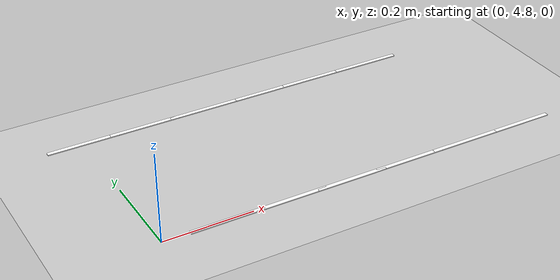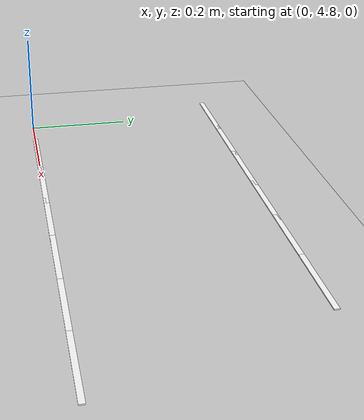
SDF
<sdf version="1.7">
 <world name="default">
  <model name="ground_plane">
   <static>1</static>
   <link name="link">
    <collision name="collision">
     <geometry><plane><normal>0 0 1</normal><size>100 100</size></plane></geometry>
     <surface>
      <contact><collide_bitmask>65535</collide_bitmask></contact>
      <friction><ode><mu>100</mu><mu2>50</mu2></ode></friction>
     </surface>
    </collision>
    <visual name="visual">
     <cast_shadows>0</cast_shadows>
     <geometry><plane><normal>0 0 1</normal><size>100 100</size></plane></geometry>
     <material>
      <script><uri>file://media/materials/scripts/gazebo.material</uri><name>Gazebo/Grey</name></script>
     </material>
    </visual>
   </link>
  </model>
  <model name="lane_line_left_218">
   <static>1</static>
   <link name="link">
    <pose>0 0 -0.004 0 -0 0</pose>
    <visual name="visual">
     <geometry><box><size>0.1629 0.01 0.01</size></box></geometry>
     <material><ambient>1 1 1 1</ambient><diffuse>1 1 1 1</diffuse></material>
    </visual>
    <collision name="collision"><geometry><box><size>0.1629 0.01 0.01</size></box></geometry></collision>
   </link>
   <pose>0.857143 4.8 0 0 -0 3.14159</pose>
  </model>
  <model name="lane_line_left_219">
   <static>1</static>
   <link name="link">
    <pose>0 0 -0.004 0 -0 0</pose>
    <visual name="visual">
     <geometry><box><size>0.1629 0.01 0.01</size></box></geometry>
     <material><ambient>1 1 1 1</ambient><diffuse>1 1 1 1</diffuse></material>
    </visual>
    <collision name="collision"><geometry><box><size>0.1629 0.01 0.01</size></box></geometry></collision>
   </link>
   <pose>0.714286 4.8 0 0 -0 3.14159</pose>
  </model>
  <model name="lane_line_right_219">
   <static>1</static>
   <link name="link">
    <pose>0 0 -0.004 0 -0 0</pose>
    <visual name="visual">
     <geometry><box><size>0.1629 0.01 0.01</size></box></geometry>
     <material><ambient>1 1 1 1</ambient><diffuse>1 1 1 1</diffuse></material>
    </visual>
    <collision name="collision"><geometry><box><size>0.1629 0.01 0.01</size></box></geometry></collision>
   </link>
   <pose>0.714286 5.2 0 0 -0 3.14159</pose>
  </model>
  <model name="lane_line_left_220">
   <static>1</static>
   <link name="link">
    <pose>0 0 -0.004 0 -0 0</pose>
    <visual name="visual">
     <geometry><box><size>0.1629 0.01 0.01</size></box></geometry>
     <material><ambient>1 1 1 1</ambient><diffuse>1 1 1 1</diffuse></material>
    </visual>
    <collision name="collision"><geometry><box><size>0.1629 0.01 0.01</size></box></geometry></collision>
   </link>
   <pose>0.571429 4.8 0 0 -0 3.14159</pose>
  </model>
  <model name="lane_line_right_220">
   <static>1</static>
   <link name="link">
    <pose>0 0 -0.004 0 -0 0</pose>
    <visual name="visual">
     <geometry><box><size>0.1629 0.01 0.01</size></box></geometry>
     <material><ambient>1 1 1 1</ambient><diffuse>1 1 1 1</diffuse></material>
    </visual>
    <collision name="collision"><geometry><box><size>0.1629 0.01 0.01</size></box></geometry></collision>
   </link>
   <pose>0.571429 5.2 0 0 -0 3.14159</pose>
  </model>
  <model name="lane_line_left_221">
   <static>1</static>
   <link name="link">
    <pose>0 0 -0.004 0 -0 0</pose>
    <visual name="visual">
     <geometry><box><size>0.1629 0.01 0.01</size></box></geometry>
     <material><ambient>1 1 1 1</ambient><diffuse>1 1 1 1</diffuse></material>
    </visual>
    <collision name="collision"><geometry><box><size>0.1629 0.01 0.01</size></box></geometry></collision>
   </link>
   <pose>0.428571 4.8 0 0 -0 3.14159</pose>
  </model>
  <model name="lane_line_right_221">
   <static>1</static>
   <link name="link">
    <pose>0 0 -0.004 0 -0 0</pose>
    <visual name="visual">
     <geometry><box><size>0.1629 0.01 0.01</size></box></geometry>
     <material><ambient>1 1 1 1</ambient><diffuse>1 1 1 1</diffuse></material>
    </visual>
    <collision name="collision"><geometry><box><size>0.1629 0.01 0.01</size></box></geometry></collision>
   </link>
   <pose>0.428571 5.2 0 0 -0 3.14159</pose>
  </model>
  <model name="lane_line_left_222">
   <static>1</static>
   <link name="link">
    <pose>0 0 -0.004 0 -0 0</pose>
    <visual name="visual">
     <geometry><box><size>0.1629 0.01 0.01</size></box></geometry>
     <material><ambient>1 1 1 1</ambient><diffuse>1 1 1 1</diffuse></material>
    </visual>
    <collision name="collision"><geometry><box><size>0.1629 0.01 0.01</size></box></geometry></collision>
   </link>
   <pose>0.285714 4.8 0 0 -0 3.14159</pose>
  </model>
  <model name="lane_line_right_222">
   <static>1</static>
   <link name="link">
    <pose>0 0 -0.004 0 -0 0</pose>
    <visual name="visual">
     <geometry><box><size>0.1629 0.01 0.01</size></box></geometry>
     <material><ambient>1 1 1 1</ambient><diffuse>1 1 1 1</diffuse></material>
    </visual>
    <collision name="collision"><geometry><box><size>0.1629 0.01 0.01</size></box></geometry></collision>
   </link>
   <pose>0.285714 5.2 0 0 -0 3.14159</pose>
  </model>
  <model name="lane_line_left_223">
   <static>1</static>
   <link name="link">
    <pose>0 0 -0.004 0 -0 0</pose>
    <visual name="visual">
     <geometry><box><size>0.1629 0.01 0.01</size></box></geometry>
     <material><ambient>1 1 1 1</ambient><diffuse>1 1 1 1</diffuse></material>
    </visual>
    <collision name="collision"><geometry><box><size>0.1629 0.01 0.01</size></box></geometry></collision>
   </link>
   <pose>0.142857 4.8 0 0 -0 3.14159</pose>
  </model>
  <model name="lane_line_right_223">
   <static>1</static>
   <link name="link">
    <pose>0 0 -0.004 0 -0 0</pose>
    <visual name="visual">
     <geometry><box><size>0.1629 0.01 0.01</size></box></geometry>
     <material><ambient>1 1 1 1</ambient><diffuse>1 1 1 1</diffuse></material>
    </visual>
    <collision name="collision"><geometry><box><size>0.1629 0.01 0.01</size></box></geometry></collision>
   </link>
   <pose>0.142857 5.2 0 0 -0 3.14159</pose>
  </model>
  <model name="lane_line_right_224">
   <static>1</static>
   <link name="link">
    <pose>0 0 -0.004 0 -0 0</pose>
    <visual name="visual">
     <geometry><box><size>0.1629 0.01 0.01</size></box></geometry>
     <material><ambient>1 1 1 1</ambient><diffuse>1 1 1 1</diffuse></material>
    </visual>
    <collision name="collision"><geometry><box><size>0.1629 0.01 0.01</size></box></geometry></collision>
   </link>
   <pose>0 5.2 0 0 -0 3.14159</pose>
  </model>
 </world>
</sdf>
